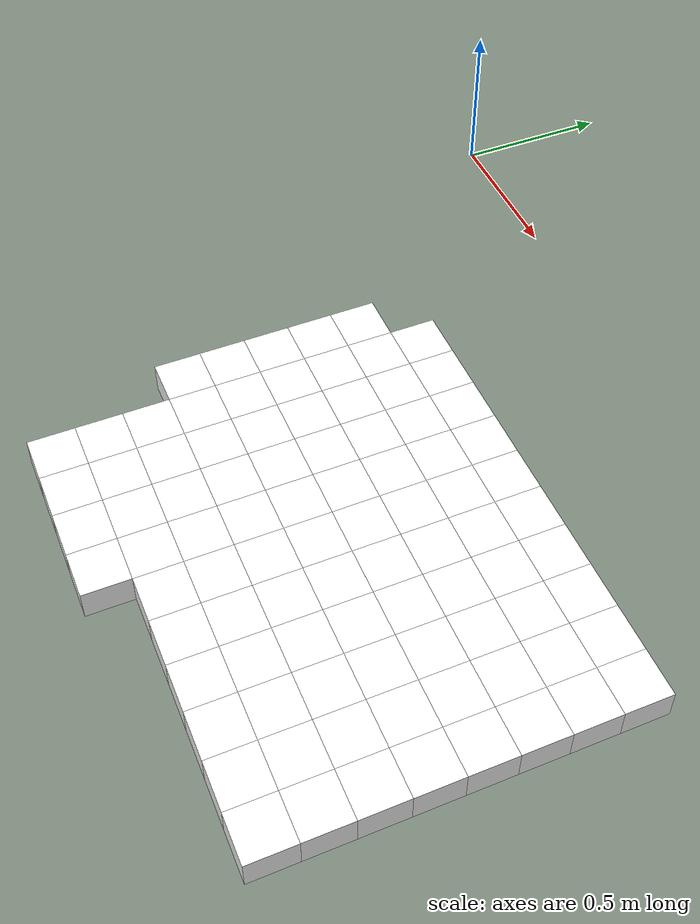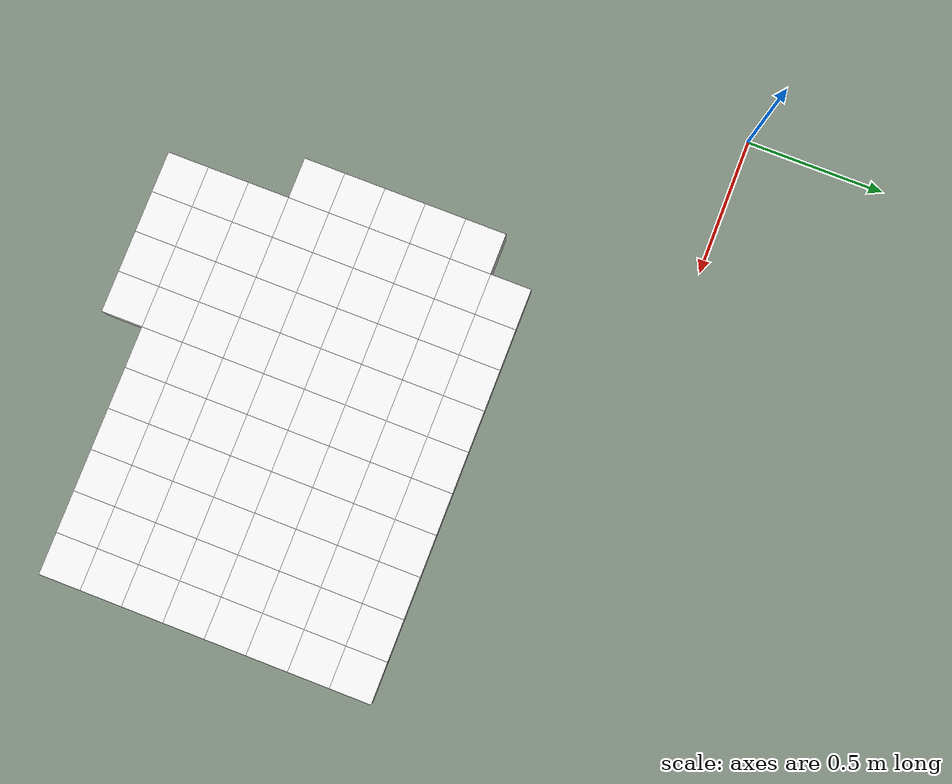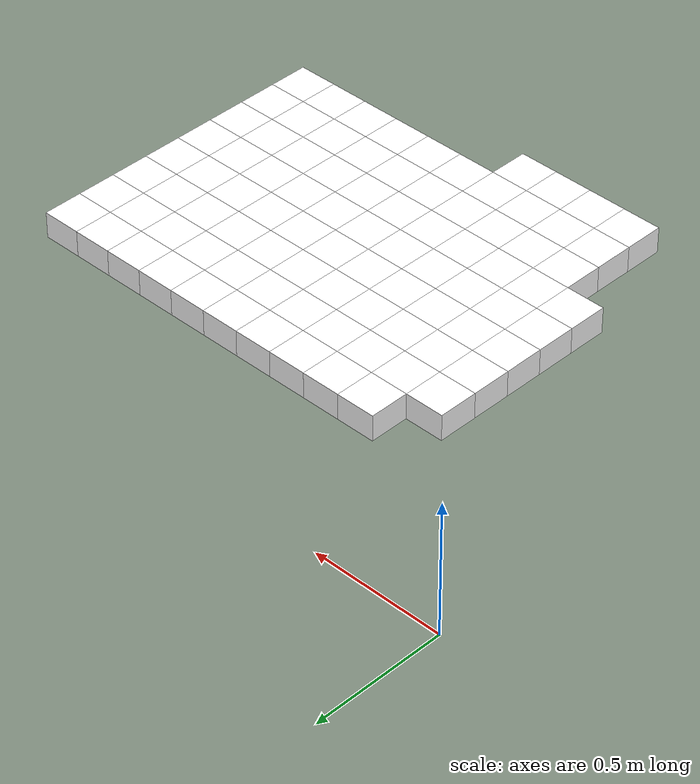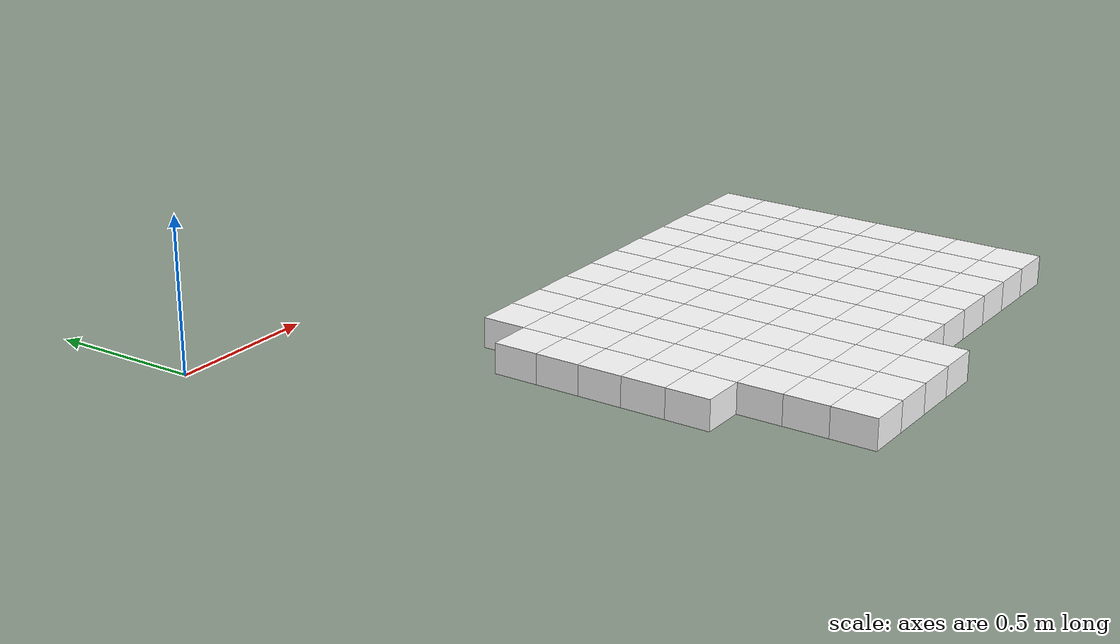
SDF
<sdf version="1.7">
 <world name="default">
  <include><uri>model://sun</uri></include>
  <model name="static_environment">
   <static>true</static>
   <link name="region_369">
    <pose>0.6998798657921892 -0.7502402416940271 0.0 0.0 0.0 4.7123</pose>
    <collision name="region_369_collision">
     <geometry><box><size>0.15 0.15 0.1</size></box></geometry>
     <surface><friction><ode><mu>1.0</mu><mu2>1.0</mu2></ode></friction></surface>
    </collision>
    <visual name="region_369_visual">
     <geometry><box><size>0.15 0.15 0.1</size></box></geometry>
     <material><ambient>1.0 1.0 1.0 1.0</ambient><diffuse>1.0 1.0 1.0 1.0</diffuse></material>
    </visual>
   </link>
   <link name="region_370">
    <pose>0.6998665187345035 -0.9002402411002141 0.0 0.0 0.0 4.7123</pose>
    <collision name="region_370_collision">
     <geometry><box><size>0.15 0.15 0.1</size></box></geometry>
     <surface><friction><ode><mu>1.0</mu><mu2>1.0</mu2></ode></friction></surface>
    </collision>
    <visual name="region_370_visual">
     <geometry><box><size>0.15 0.15 0.1</size></box></geometry>
     <material><ambient>1.0 1.0 1.0 1.0</ambient><diffuse>1.0 1.0 1.0 1.0</diffuse></material>
    </visual>
   </link>
   <link name="region_371">
    <pose>0.6998531716768177 -1.0502402405064006 0.0 0.0 0.0 4.7123</pose>
    <collision name="region_371_collision">
     <geometry><box><size>0.15 0.15 0.1</size></box></geometry>
     <surface><friction><ode><mu>1.0</mu><mu2>1.0</mu2></ode></friction></surface>
    </collision>
    <visual name="region_371_visual">
     <geometry><box><size>0.15 0.15 0.1</size></box></geometry>
     <material><ambient>1.0 1.0 1.0 1.0</ambient><diffuse>1.0 1.0 1.0 1.0</diffuse></material>
    </visual>
   </link>
   <link name="region_372">
    <pose>0.6998398246191315 -1.2002402399125875 0.0 0.0 0.0 4.7123</pose>
    <collision name="region_372_collision">
     <geometry><box><size>0.15 0.15 0.1</size></box></geometry>
     <surface><friction><ode><mu>1.0</mu><mu2>1.0</mu2></ode></friction></surface>
    </collision>
    <visual name="region_372_visual">
     <geometry><box><size>0.15 0.15 0.1</size></box></geometry>
     <material><ambient>1.0 1.0 1.0 1.0</ambient><diffuse>1.0 1.0 1.0 1.0</diffuse></material>
    </visual>
   </link>
   <link name="region_373">
    <pose>0.6998264775614458 -1.350240239318774 0.0 0.0 0.0 4.7123</pose>
    <collision name="region_373_collision">
     <geometry><box><size>0.15 0.15 0.1</size></box></geometry>
     <surface><friction><ode><mu>1.0</mu><mu2>1.0</mu2></ode></friction></surface>
    </collision>
    <visual name="region_373_visual">
     <geometry><box><size>0.15 0.15 0.1</size></box></geometry>
     <material><ambient>1.0 1.0 1.0 1.0</ambient><diffuse>1.0 1.0 1.0 1.0</diffuse></material>
    </visual>
   </link>
   <link name="region_388">
    <pose>0.8498932122560623 -0.6002535893455262 0.0 0.0 0.0 4.7123</pose>
    <collision name="region_388_collision">
     <geometry><box><size>0.15 0.15 0.1</size></box></geometry>
     <surface><friction><ode><mu>1.0</mu><mu2>1.0</mu2></ode></friction></surface>
    </collision>
    <visual name="region_388_visual">
     <geometry><box><size>0.15 0.15 0.1</size></box></geometry>
     <material><ambient>1.0 1.0 1.0 1.0</ambient><diffuse>1.0 1.0 1.0 1.0</diffuse></material>
    </visual>
   </link>
   <link name="region_389">
    <pose>0.8498798651983761 -0.7502535887517129 0.0 0.0 0.0 4.7123</pose>
    <collision name="region_389_collision">
     <geometry><box><size>0.15 0.15 0.1</size></box></geometry>
     <surface><friction><ode><mu>1.0</mu><mu2>1.0</mu2></ode></friction></surface>
    </collision>
    <visual name="region_389_visual">
     <geometry><box><size>0.15 0.15 0.1</size></box></geometry>
     <material><ambient>1.0 1.0 1.0 1.0</ambient><diffuse>1.0 1.0 1.0 1.0</diffuse></material>
    </visual>
   </link>
   <link name="region_390">
    <pose>0.8498665181406904 -0.9002535881578998 0.0 0.0 0.0 4.7123</pose>
    <collision name="region_390_collision">
     <geometry><box><size>0.15 0.15 0.1</size></box></geometry>
     <surface><friction><ode><mu>1.0</mu><mu2>1.0</mu2></ode></friction></surface>
    </collision>
    <visual name="region_390_visual">
     <geometry><box><size>0.15 0.15 0.1</size></box></geometry>
     <material><ambient>1.0 1.0 1.0 1.0</ambient><diffuse>1.0 1.0 1.0 1.0</diffuse></material>
    </visual>
   </link>
   <link name="region_391">
    <pose>0.8498531710830046 -1.0502535875640864 0.0 0.0 0.0 4.7123</pose>
    <collision name="region_391_collision">
     <geometry><box><size>0.15 0.15 0.1</size></box></geometry>
     <surface><friction><ode><mu>1.0</mu><mu2>1.0</mu2></ode></friction></surface>
    </collision>
    <visual name="region_391_visual">
     <geometry><box><size>0.15 0.15 0.1</size></box></geometry>
     <material><ambient>1.0 1.0 1.0 1.0</ambient><diffuse>1.0 1.0 1.0 1.0</diffuse></material>
    </visual>
   </link>
   <link name="region_392">
    <pose>0.8498398240253184 -1.2002535869702733 0.0 0.0 0.0 4.7123</pose>
    <collision name="region_392_collision">
     <geometry><box><size>0.15 0.15 0.1</size></box></geometry>
     <surface><friction><ode><mu>1.0</mu><mu2>1.0</mu2></ode></friction></surface>
    </collision>
    <visual name="region_392_visual">
     <geometry><box><size>0.15 0.15 0.1</size></box></geometry>
     <material><ambient>1.0 1.0 1.0 1.0</ambient><diffuse>1.0 1.0 1.0 1.0</diffuse></material>
    </visual>
   </link>
   <link name="region_393">
    <pose>0.8498264769676327 -1.3502535863764598 0.0 0.0 0.0 4.7123</pose>
    <collision name="region_393_collision">
     <geometry><box><size>0.15 0.15 0.1</size></box></geometry>
     <surface><friction><ode><mu>1.0</mu><mu2>1.0</mu2></ode></friction></surface>
    </collision>
    <visual name="region_393_visual">
     <geometry><box><size>0.15 0.15 0.1</size></box></geometry>
     <material><ambient>1.0 1.0 1.0 1.0</ambient><diffuse>1.0 1.0 1.0 1.0</diffuse></material>
    </visual>
   </link>
   <link name="region_394">
    <pose>0.849813129909947 -1.5002535857826471 0.0 0.0 0.0 4.7123</pose>
    <collision name="region_394_collision">
     <geometry><box><size>0.15 0.15 0.1</size></box></geometry>
     <surface><friction><ode><mu>1.0</mu><mu2>1.0</mu2></ode></friction></surface>
    </collision>
    <visual name="region_394_visual">
     <geometry><box><size>0.15 0.15 0.1</size></box></geometry>
     <material><ambient>1.0 1.0 1.0 1.0</ambient><diffuse>1.0 1.0 1.0 1.0</diffuse></material>
    </visual>
   </link>
   <link name="region_395">
    <pose>0.8497997828522608 -1.6502535851888336 0.0 0.0 0.0 4.7123</pose>
    <collision name="region_395_collision">
     <geometry><box><size>0.15 0.15 0.1</size></box></geometry>
     <surface><friction><ode><mu>1.0</mu><mu2>1.0</mu2></ode></friction></surface>
    </collision>
    <visual name="region_395_visual">
     <geometry><box><size>0.15 0.15 0.1</size></box></geometry>
     <material><ambient>1.0 1.0 1.0 1.0</ambient><diffuse>1.0 1.0 1.0 1.0</diffuse></material>
    </visual>
   </link>
   <link name="region_396">
    <pose>0.849786435794575 -1.8002535845950205 0.0 0.0 0.0 4.7123</pose>
    <collision name="region_396_collision">
     <geometry><box><size>0.15 0.15 0.1</size></box></geometry>
     <surface><friction><ode><mu>1.0</mu><mu2>1.0</mu2></ode></friction></surface>
    </collision>
    <visual name="region_396_visual">
     <geometry><box><size>0.15 0.15 0.1</size></box></geometry>
     <material><ambient>1.0 1.0 1.0 1.0</ambient><diffuse>1.0 1.0 1.0 1.0</diffuse></material>
    </visual>
   </link>
   <link name="region_408">
    <pose>0.9998932116622492 -0.6002669364032122 0.0 0.0 0.0 4.7123</pose>
    <collision name="region_408_collision">
     <geometry><box><size>0.15 0.15 0.1</size></box></geometry>
     <surface><friction><ode><mu>1.0</mu><mu2>1.0</mu2></ode></friction></surface>
    </collision>
    <visual name="region_408_visual">
     <geometry><box><size>0.15 0.15 0.1</size></box></geometry>
     <material><ambient>1.0 1.0 1.0 1.0</ambient><diffuse>1.0 1.0 1.0 1.0</diffuse></material>
    </visual>
   </link>
   <link name="region_409">
    <pose>0.999879864604563 -0.7502669358093988 0.0 0.0 0.0 4.7123</pose>
    <collision name="region_409_collision">
     <geometry><box><size>0.15 0.15 0.1</size></box></geometry>
     <surface><friction><ode><mu>1.0</mu><mu2>1.0</mu2></ode></friction></surface>
    </collision>
    <visual name="region_409_visual">
     <geometry><box><size>0.15 0.15 0.1</size></box></geometry>
     <material><ambient>1.0 1.0 1.0 1.0</ambient><diffuse>1.0 1.0 1.0 1.0</diffuse></material>
    </visual>
   </link>
   <link name="region_410">
    <pose>0.9998665175468773 -0.9002669352155858 0.0 0.0 0.0 4.7123</pose>
    <collision name="region_410_collision">
     <geometry><box><size>0.15 0.15 0.1</size></box></geometry>
     <surface><friction><ode><mu>1.0</mu><mu2>1.0</mu2></ode></friction></surface>
    </collision>
    <visual name="region_410_visual">
     <geometry><box><size>0.15 0.15 0.1</size></box></geometry>
     <material><ambient>1.0 1.0 1.0 1.0</ambient><diffuse>1.0 1.0 1.0 1.0</diffuse></material>
    </visual>
   </link>
   <link name="region_411">
    <pose>0.9998531704891915 -1.0502669346217726 0.0 0.0 0.0 4.7123</pose>
    <collision name="region_411_collision">
     <geometry><box><size>0.15 0.15 0.1</size></box></geometry>
     <surface><friction><ode><mu>1.0</mu><mu2>1.0</mu2></ode></friction></surface>
    </collision>
    <visual name="region_411_visual">
     <geometry><box><size>0.15 0.15 0.1</size></box></geometry>
     <material><ambient>1.0 1.0 1.0 1.0</ambient><diffuse>1.0 1.0 1.0 1.0</diffuse></material>
    </visual>
   </link>
   <link name="region_412">
    <pose>0.9998398234315053 -1.200266934027959 0.0 0.0 0.0 4.7123</pose>
    <collision name="region_412_collision">
     <geometry><box><size>0.15 0.15 0.1</size></box></geometry>
     <surface><friction><ode><mu>1.0</mu><mu2>1.0</mu2></ode></friction></surface>
    </collision>
    <visual name="region_412_visual">
     <geometry><box><size>0.15 0.15 0.1</size></box></geometry>
     <material><ambient>1.0 1.0 1.0 1.0</ambient><diffuse>1.0 1.0 1.0 1.0</diffuse></material>
    </visual>
   </link>
   <link name="region_413">
    <pose>0.9998264763738196 -1.350266933434146 0.0 0.0 0.0 4.7123</pose>
    <collision name="region_413_collision">
     <geometry><box><size>0.15 0.15 0.1</size></box></geometry>
     <surface><friction><ode><mu>1.0</mu><mu2>1.0</mu2></ode></friction></surface>
    </collision>
    <visual name="region_413_visual">
     <geometry><box><size>0.15 0.15 0.1</size></box></geometry>
     <material><ambient>1.0 1.0 1.0 1.0</ambient><diffuse>1.0 1.0 1.0 1.0</diffuse></material>
    </visual>
   </link>
   <link name="region_414">
    <pose>0.9998131293161339 -1.5002669328403329 0.0 0.0 0.0 4.7123</pose>
    <collision name="region_414_collision">
     <geometry><box><size>0.15 0.15 0.1</size></box></geometry>
     <surface><friction><ode><mu>1.0</mu><mu2>1.0</mu2></ode></friction></surface>
    </collision>
    <visual name="region_414_visual">
     <geometry><box><size>0.15 0.15 0.1</size></box></geometry>
     <material><ambient>1.0 1.0 1.0 1.0</ambient><diffuse>1.0 1.0 1.0 1.0</diffuse></material>
    </visual>
   </link>
   <link name="region_415">
    <pose>0.9997997822584477 -1.6502669322465193 0.0 0.0 0.0 4.7123</pose>
    <collision name="region_415_collision">
     <geometry><box><size>0.15 0.15 0.1</size></box></geometry>
     <surface><friction><ode><mu>1.0</mu><mu2>1.0</mu2></ode></friction></surface>
    </collision>
    <visual name="region_415_visual">
     <geometry><box><size>0.15 0.15 0.1</size></box></geometry>
     <material><ambient>1.0 1.0 1.0 1.0</ambient><diffuse>1.0 1.0 1.0 1.0</diffuse></material>
    </visual>
   </link>
   <link name="region_416">
    <pose>0.9997864352007619 -1.8002669316527062 0.0 0.0 0.0 4.7123</pose>
    <collision name="region_416_collision">
     <geometry><box><size>0.15 0.15 0.1</size></box></geometry>
     <surface><friction><ode><mu>1.0</mu><mu2>1.0</mu2></ode></friction></surface>
    </collision>
    <visual name="region_416_visual">
     <geometry><box><size>0.15 0.15 0.1</size></box></geometry>
     <material><ambient>1.0 1.0 1.0 1.0</ambient><diffuse>1.0 1.0 1.0 1.0</diffuse></material>
    </visual>
   </link>
   <link name="region_428">
    <pose>1.1498932110684357 -0.6002802834608981 0.0 0.0 0.0 4.7123</pose>
    <collision name="region_428_collision">
     <geometry><box><size>0.15 0.15 0.1</size></box></geometry>
     <surface><friction><ode><mu>1.0</mu><mu2>1.0</mu2></ode></friction></surface>
    </collision>
    <visual name="region_428_visual">
     <geometry><box><size>0.15 0.15 0.1</size></box></geometry>
     <material><ambient>1.0 1.0 1.0 1.0</ambient><diffuse>1.0 1.0 1.0 1.0</diffuse></material>
    </visual>
   </link>
   <link name="region_429">
    <pose>1.1498798640107495 -0.7502802828670848 0.0 0.0 0.0 4.7123</pose>
    <collision name="region_429_collision">
     <geometry><box><size>0.15 0.15 0.1</size></box></geometry>
     <surface><friction><ode><mu>1.0</mu><mu2>1.0</mu2></ode></friction></surface>
    </collision>
    <visual name="region_429_visual">
     <geometry><box><size>0.15 0.15 0.1</size></box></geometry>
     <material><ambient>1.0 1.0 1.0 1.0</ambient><diffuse>1.0 1.0 1.0 1.0</diffuse></material>
    </visual>
   </link>
   <link name="region_430">
    <pose>1.1498665169530637 -0.9002802822732717 0.0 0.0 0.0 4.7123</pose>
    <collision name="region_430_collision">
     <geometry><box><size>0.15 0.15 0.1</size></box></geometry>
     <surface><friction><ode><mu>1.0</mu><mu2>1.0</mu2></ode></friction></surface>
    </collision>
    <visual name="region_430_visual">
     <geometry><box><size>0.15 0.15 0.1</size></box></geometry>
     <material><ambient>1.0 1.0 1.0 1.0</ambient><diffuse>1.0 1.0 1.0 1.0</diffuse></material>
    </visual>
   </link>
   <link name="region_431">
    <pose>1.149853169895378 -1.0502802816794583 0.0 0.0 0.0 4.7123</pose>
    <collision name="region_431_collision">
     <geometry><box><size>0.15 0.15 0.1</size></box></geometry>
     <surface><friction><ode><mu>1.0</mu><mu2>1.0</mu2></ode></friction></surface>
    </collision>
    <visual name="region_431_visual">
     <geometry><box><size>0.15 0.15 0.1</size></box></geometry>
     <material><ambient>1.0 1.0 1.0 1.0</ambient><diffuse>1.0 1.0 1.0 1.0</diffuse></material>
    </visual>
   </link>
   <link name="region_432">
    <pose>1.1498398228376918 -1.2002802810856452 0.0 0.0 0.0 4.7123</pose>
    <collision name="region_432_collision">
     <geometry><box><size>0.15 0.15 0.1</size></box></geometry>
     <surface><friction><ode><mu>1.0</mu><mu2>1.0</mu2></ode></friction></surface>
    </collision>
    <visual name="region_432_visual">
     <geometry><box><size>0.15 0.15 0.1</size></box></geometry>
     <material><ambient>1.0 1.0 1.0 1.0</ambient><diffuse>1.0 1.0 1.0 1.0</diffuse></material>
    </visual>
   </link>
   <link name="region_433">
    <pose>1.149826475780006 -1.3502802804918317 0.0 0.0 0.0 4.7123</pose>
    <collision name="region_433_collision">
     <geometry><box><size>0.15 0.15 0.1</size></box></geometry>
     <surface><friction><ode><mu>1.0</mu><mu2>1.0</mu2></ode></friction></surface>
    </collision>
    <visual name="region_433_visual">
     <geometry><box><size>0.15 0.15 0.1</size></box></geometry>
     <material><ambient>1.0 1.0 1.0 1.0</ambient><diffuse>1.0 1.0 1.0 1.0</diffuse></material>
    </visual>
   </link>
   <link name="region_434">
    <pose>1.1498131287223203 -1.5002802798980186 0.0 0.0 0.0 4.7123</pose>
    <collision name="region_434_collision">
     <geometry><box><size>0.15 0.15 0.1</size></box></geometry>
     <surface><friction><ode><mu>1.0</mu><mu2>1.0</mu2></ode></friction></surface>
    </collision>
    <visual name="region_434_visual">
     <geometry><box><size>0.15 0.15 0.1</size></box></geometry>
     <material><ambient>1.0 1.0 1.0 1.0</ambient><diffuse>1.0 1.0 1.0 1.0</diffuse></material>
    </visual>
   </link>
   <link name="region_435">
    <pose>1.1497997816646341 -1.650280279304205 0.0 0.0 0.0 4.7123</pose>
    <collision name="region_435_collision">
     <geometry><box><size>0.15 0.15 0.1</size></box></geometry>
     <surface><friction><ode><mu>1.0</mu><mu2>1.0</mu2></ode></friction></surface>
    </collision>
    <visual name="region_435_visual">
     <geometry><box><size>0.15 0.15 0.1</size></box></geometry>
     <material><ambient>1.0 1.0 1.0 1.0</ambient><diffuse>1.0 1.0 1.0 1.0</diffuse></material>
    </visual>
   </link>
   <link name="region_436">
    <pose>1.1497864346069484 -1.800280278710392 0.0 0.0 0.0 4.7123</pose>
    <collision name="region_436_collision">
     <geometry><box><size>0.15 0.15 0.1</size></box></geometry>
     <surface><friction><ode><mu>1.0</mu><mu2>1.0</mu2></ode></friction></surface>
    </collision>
    <visual name="region_436_visual">
     <geometry><box><size>0.15 0.15 0.1</size></box></geometry>
     <material><ambient>1.0 1.0 1.0 1.0</ambient><diffuse>1.0 1.0 1.0 1.0</diffuse></material>
    </visual>
   </link>
   <link name="region_448">
    <pose>1.2998932104746226 -0.6002936305185839 0.0 0.0 0.0 4.7123</pose>
    <collision name="region_448_collision">
     <geometry><box><size>0.15 0.15 0.1</size></box></geometry>
     <surface><friction><ode><mu>1.0</mu><mu2>1.0</mu2></ode></friction></surface>
    </collision>
    <visual name="region_448_visual">
     <geometry><box><size>0.15 0.15 0.1</size></box></geometry>
     <material><ambient>1.0 1.0 1.0 1.0</ambient><diffuse>1.0 1.0 1.0 1.0</diffuse></material>
    </visual>
   </link>
   <link name="region_449">
    <pose>1.2998798634169364 -0.7502936299247706 0.0 0.0 0.0 4.7123</pose>
    <collision name="region_449_collision">
     <geometry><box><size>0.15 0.15 0.1</size></box></geometry>
     <surface><friction><ode><mu>1.0</mu><mu2>1.0</mu2></ode></friction></surface>
    </collision>
    <visual name="region_449_visual">
     <geometry><box><size>0.15 0.15 0.1</size></box></geometry>
     <material><ambient>1.0 1.0 1.0 1.0</ambient><diffuse>1.0 1.0 1.0 1.0</diffuse></material>
    </visual>
   </link>
   <link name="region_450">
    <pose>1.2998665163592507 -0.9002936293309575 0.0 0.0 0.0 4.7123</pose>
    <collision name="region_450_collision">
     <geometry><box><size>0.15 0.15 0.1</size></box></geometry>
     <surface><friction><ode><mu>1.0</mu><mu2>1.0</mu2></ode></friction></surface>
    </collision>
    <visual name="region_450_visual">
     <geometry><box><size>0.15 0.15 0.1</size></box></geometry>
     <material><ambient>1.0 1.0 1.0 1.0</ambient><diffuse>1.0 1.0 1.0 1.0</diffuse></material>
    </visual>
   </link>
   <link name="region_451">
    <pose>1.299853169301565 -1.050293628737144 0.0 0.0 0.0 4.7123</pose>
    <collision name="region_451_collision">
     <geometry><box><size>0.15 0.15 0.1</size></box></geometry>
     <surface><friction><ode><mu>1.0</mu><mu2>1.0</mu2></ode></friction></surface>
    </collision>
    <visual name="region_451_visual">
     <geometry><box><size>0.15 0.15 0.1</size></box></geometry>
     <material><ambient>1.0 1.0 1.0 1.0</ambient><diffuse>1.0 1.0 1.0 1.0</diffuse></material>
    </visual>
   </link>
   <link name="region_452">
    <pose>1.2998398222438787 -1.200293628143331 0.0 0.0 0.0 4.7123</pose>
    <collision name="region_452_collision">
     <geometry><box><size>0.15 0.15 0.1</size></box></geometry>
     <surface><friction><ode><mu>1.0</mu><mu2>1.0</mu2></ode></friction></surface>
    </collision>
    <visual name="region_452_visual">
     <geometry><box><size>0.15 0.15 0.1</size></box></geometry>
     <material><ambient>1.0 1.0 1.0 1.0</ambient><diffuse>1.0 1.0 1.0 1.0</diffuse></material>
    </visual>
   </link>
   <link name="region_453">
    <pose>1.299826475186193 -1.3502936275495174 0.0 0.0 0.0 4.7123</pose>
    <collision name="region_453_collision">
     <geometry><box><size>0.15 0.15 0.1</size></box></geometry>
     <surface><friction><ode><mu>1.0</mu><mu2>1.0</mu2></ode></friction></surface>
    </collision>
    <visual name="region_453_visual">
     <geometry><box><size>0.15 0.15 0.1</size></box></geometry>
     <material><ambient>1.0 1.0 1.0 1.0</ambient><diffuse>1.0 1.0 1.0 1.0</diffuse></material>
    </visual>
   </link>
   <link name="region_454">
    <pose>1.2998131281285072 -1.5002936269557048 0.0 0.0 0.0 4.7123</pose>
    <collision name="region_454_collision">
     <geometry><box><size>0.15 0.15 0.1</size></box></geometry>
     <surface><friction><ode><mu>1.0</mu><mu2>1.0</mu2></ode></friction></surface>
    </collision>
    <visual name="region_454_visual">
     <geometry><box><size>0.15 0.15 0.1</size></box></geometry>
     <material><ambient>1.0 1.0 1.0 1.0</ambient><diffuse>1.0 1.0 1.0 1.0</diffuse></material>
    </visual>
   </link>
   <link name="region_455">
    <pose>1.299799781070821 -1.6502936263618913 0.0 0.0 0.0 4.7123</pose>
    <collision name="region_455_collision">
     <geometry><box><size>0.15 0.15 0.1</size></box></geometry>
     <surface><friction><ode><mu>1.0</mu><mu2>1.0</mu2></ode></friction></surface>
    </collision>
    <visual name="region_455_visual">
     <geometry><box><size>0.15 0.15 0.1</size></box></geometry>
     <material><ambient>1.0 1.0 1.0 1.0</ambient><diffuse>1.0 1.0 1.0 1.0</diffuse></material>
    </visual>
   </link>
   <link name="region_456">
    <pose>1.2997864340131353 -1.8002936257680782 0.0 0.0 0.0 4.7123</pose>
    <collision name="region_456_collision">
     <geometry><box><size>0.15 0.15 0.1</size></box></geometry>
     <surface><friction><ode><mu>1.0</mu><mu2>1.0</mu2></ode></friction></surface>
    </collision>
    <visual name="region_456_visual">
     <geometry><box><size>0.15 0.15 0.1</size></box></geometry>
     <material><ambient>1.0 1.0 1.0 1.0</ambient><diffuse>1.0 1.0 1.0 1.0</diffuse></material>
    </visual>
   </link>
   <link name="region_468">
    <pose>1.449893209880809 -0.6003069775762698 0.0 0.0 0.0 4.7123</pose>
    <collision name="region_468_collision">
     <geometry><box><size>0.15 0.15 0.1</size></box></geometry>
     <surface><friction><ode><mu>1.0</mu><mu2>1.0</mu2></ode></friction></surface>
    </collision>
    <visual name="region_468_visual">
     <geometry><box><size>0.15 0.15 0.1</size></box></geometry>
     <material><ambient>1.0 1.0 1.0 1.0</ambient><diffuse>1.0 1.0 1.0 1.0</diffuse></material>
    </visual>
   </link>
   <link name="region_469">
    <pose>1.4498798628231229 -0.7503069769824565 0.0 0.0 0.0 4.7123</pose>
    <collision name="region_469_collision">
     <geometry><box><size>0.15 0.15 0.1</size></box></geometry>
     <surface><friction><ode><mu>1.0</mu><mu2>1.0</mu2></ode></friction></surface>
    </collision>
    <visual name="region_469_visual">
     <geometry><box><size>0.15 0.15 0.1</size></box></geometry>
     <material><ambient>1.0 1.0 1.0 1.0</ambient><diffuse>1.0 1.0 1.0 1.0</diffuse></material>
    </visual>
   </link>
   <link name="region_470">
    <pose>1.4498665157654371 -0.9003069763886434 0.0 0.0 0.0 4.7123</pose>
    <collision name="region_470_collision">
     <geometry><box><size>0.15 0.15 0.1</size></box></geometry>
     <surface><friction><ode><mu>1.0</mu><mu2>1.0</mu2></ode></friction></surface>
    </collision>
    <visual name="region_470_visual">
     <geometry><box><size>0.15 0.15 0.1</size></box></geometry>
     <material><ambient>1.0 1.0 1.0 1.0</ambient><diffuse>1.0 1.0 1.0 1.0</diffuse></material>
    </visual>
   </link>
   <link name="region_471">
    <pose>1.4498531687077514 -1.0503069757948302 0.0 0.0 0.0 4.7123</pose>
    <collision name="region_471_collision">
     <geometry><box><size>0.15 0.15 0.1</size></box></geometry>
     <surface><friction><ode><mu>1.0</mu><mu2>1.0</mu2></ode></friction></surface>
    </collision>
    <visual name="region_471_visual">
     <geometry><box><size>0.15 0.15 0.1</size></box></geometry>
     <material><ambient>1.0 1.0 1.0 1.0</ambient><diffuse>1.0 1.0 1.0 1.0</diffuse></material>
    </visual>
   </link>
   <link name="region_472">
    <pose>1.4498398216500652 -1.2003069752010167 0.0 0.0 0.0 4.7123</pose>
    <collision name="region_472_collision">
     <geometry><box><size>0.15 0.15 0.1</size></box></geometry>
     <surface><friction><ode><mu>1.0</mu><mu2>1.0</mu2></ode></friction></surface>
    </collision>
    <visual name="region_472_visual">
     <geometry><box><size>0.15 0.15 0.1</size></box></geometry>
     <material><ambient>1.0 1.0 1.0 1.0</ambient><diffuse>1.0 1.0 1.0 1.0</diffuse></material>
    </visual>
   </link>
   <link name="region_473">
    <pose>1.4498264745923795 -1.3503069746072036 0.0 0.0 0.0 4.7123</pose>
    <collision name="region_473_collision">
     <geometry><box><size>0.15 0.15 0.1</size></box></geometry>
     <surface><friction><ode><mu>1.0</mu><mu2>1.0</mu2></ode></friction></surface>
    </collision>
    <visual name="region_473_visual">
     <geometry><box><size>0.15 0.15 0.1</size></box></geometry>
     <material><ambient>1.0 1.0 1.0 1.0</ambient><diffuse>1.0 1.0 1.0 1.0</diffuse></material>
    </visual>
   </link>
   <link name="region_474">
    <pose>1.4498131275346937 -1.5003069740133905 0.0 0.0 0.0 4.7123</pose>
    <collision name="region_474_collision">
     <geometry><box><size>0.15 0.15 0.1</size></box></geometry>
     <surface><friction><ode><mu>1.0</mu><mu2>1.0</mu2></ode></friction></surface>
    </collision>
    <visual name="region_474_visual">
     <geometry><box><size>0.15 0.15 0.1</size></box></geometry>
     <material><ambient>1.0 1.0 1.0 1.0</ambient><diffuse>1.0 1.0 1.0 1.0</diffuse></material>
    </visual>
   </link>
   <link name="region_475">
    <pose>1.4497997804770075 -1.650306973419577 0.0 0.0 0.0 4.7123</pose>
    <collision name="region_475_collision">
     <geometry><box><size>0.15 0.15 0.1</size></box></geometry>
     <surface><friction><ode><mu>1.0</mu><mu2>1.0</mu2></ode></friction></surface>
    </collision>
    <visual name="region_475_visual">
     <geometry><box><size>0.15 0.15 0.1</size></box></geometry>
     <material><ambient>1.0 1.0 1.0 1.0</ambient><diffuse>1.0 1.0 1.0 1.0</diffuse></material>
    </visual>
   </link>
   <link name="region_488">
    <pose>1.599893209286996 -0.6003203246339556 0.0 0.0 0.0 4.7123</pose>
    <collision name="region_488_collision">
     <geometry><box><size>0.15 0.15 0.1</size></box></geometry>
     <surface><friction><ode><mu>1.0</mu><mu2>1.0</mu2></ode></friction></surface>
    </collision>
    <visual name="region_488_visual">
     <geometry><box><size>0.15 0.15 0.1</size></box></geometry>
     <material><ambient>1.0 1.0 1.0 1.0</ambient><diffuse>1.0 1.0 1.0 1.0</diffuse></material>
    </visual>
   </link>
   <link name="region_489">
    <pose>1.5998798622293098 -0.7503203240401423 0.0 0.0 0.0 4.7123</pose>
    <collision name="region_489_collision">
     <geometry><box><size>0.15 0.15 0.1</size></box></geometry>
     <surface><friction><ode><mu>1.0</mu><mu2>1.0</mu2></ode></friction></surface>
    </collision>
    <visual name="region_489_visual">
     <geometry><box><size>0.15 0.15 0.1</size></box></geometry>
     <material><ambient>1.0 1.0 1.0 1.0</ambient><diffuse>1.0 1.0 1.0 1.0</diffuse></material>
    </visual>
   </link>
   <link name="region_490">
    <pose>1.599866515171624 -0.9003203234463292 0.0 0.0 0.0 4.7123</pose>
    <collision name="region_490_collision">
     <geometry><box><size>0.15 0.15 0.1</size></box></geometry>
     <surface><friction><ode><mu>1.0</mu><mu2>1.0</mu2></ode></friction></surface>
    </collision>
    <visual name="region_490_visual">
     <geometry><box><size>0.15 0.15 0.1</size></box></geometry>
     <material><ambient>1.0 1.0 1.0 1.0</ambient><diffuse>1.0 1.0 1.0 1.0</diffuse></material>
    </visual>
   </link>
   <link name="region_491">
    <pose>1.5998531681139383 -1.050320322852516 0.0 0.0 0.0 4.7123</pose>
    <collision name="region_491_collision">
     <geometry><box><size>0.15 0.15 0.1</size></box></geometry>
     <surface><friction><ode><mu>1.0</mu><mu2>1.0</mu2></ode></friction></surface>
    </collision>
    <visual name="region_491_visual">
     <geometry><box><size>0.15 0.15 0.1</size></box></geometry>
     <material><ambient>1.0 1.0 1.0 1.0</ambient><diffuse>1.0 1.0 1.0 1.0</diffuse></material>
    </visual>
   </link>
   <link name="region_492">
    <pose>1.599839821056252 -1.2003203222587024 0.0 0.0 0.0 4.7123</pose>
    <collision name="region_492_collision">
     <geometry><box><size>0.15 0.15 0.1</size></box></geometry>
     <surface><friction><ode><mu>1.0</mu><mu2>1.0</mu2></ode></friction></surface>
    </collision>
    <visual name="region_492_visual">
     <geometry><box><size>0.15 0.15 0.1</size></box></geometry>
     <material><ambient>1.0 1.0 1.0 1.0</ambient><diffuse>1.0 1.0 1.0 1.0</diffuse></material>
    </visual>
   </link>
   <link name="region_493">
    <pose>1.5998264739985664 -1.3503203216648894 0.0 0.0 0.0 4.7123</pose>
    <collision name="region_493_collision">
     <geometry><box><size>0.15 0.15 0.1</size></box></geometry>
     <surface><friction><ode><mu>1.0</mu><mu2>1.0</mu2></ode></friction></surface>
    </collision>
    <visual name="region_493_visual">
     <geometry><box><size>0.15 0.15 0.1</size></box></geometry>
     <material><ambient>1.0 1.0 1.0 1.0</ambient><diffuse>1.0 1.0 1.0 1.0</diffuse></material>
    </visual>
   </link>
   <link name="region_494">
    <pose>1.5998131269408806 -1.5003203210710763 0.0 0.0 0.0 4.7123</pose>
    <collision name="region_494_collision">
     <geometry><box><size>0.15 0.15 0.1</size></box></geometry>
     <surface><friction><ode><mu>1.0</mu><mu2>1.0</mu2></ode></friction></surface>
    </collision>
    <visual name="region_494_visual">
     <geometry><box><size>0.15 0.15 0.1</size></box></geometry>
     <material><ambient>1.0 1.0 1.0 1.0</ambient><diffuse>1.0 1.0 1.0 1.0</diffuse></material>
    </visual>
   </link>
   <link name="region_495">
    <pose>1.5997997798831944 -1.6503203204772627 0.0 0.0 0.0 4.7123</pose>
    <collision name="region_495_collision">
     <geometry><box><size>0.15 0.15 0.1</size></box></geometry>
     <surface><friction><ode><mu>1.0</mu><mu2>1.0</mu2></ode></friction></surface>
    </collision>
    <visual name="region_495_visual">
     <geometry><box><size>0.15 0.15 0.1</size></box></geometry>
     <material><ambient>1.0 1.0 1.0 1.0</ambient><diffuse>1.0 1.0 1.0 1.0</diffuse></material>
    </visual>
   </link>
   <link name="region_508">
    <pose>1.7498932086931829 -0.6003336716916415 0.0 0.0 0.0 4.7123</pose>
    <collision name="region_508_collision">
     <geometry><box><size>0.15 0.15 0.1</size></box></geometry>
     <surface><friction><ode><mu>1.0</mu><mu2>1.0</mu2></ode></friction></surface>
    </collision>
    <visual name="region_508_visual">
     <geometry><box><size>0.15 0.15 0.1</size></box></geometry>
     <material><ambient>1.0 1.0 1.0 1.0</ambient><diffuse>1.0 1.0 1.0 1.0</diffuse></material>
    </visual>
   </link>
   <link name="region_509">
    <pose>1.7498798616354967 -0.7503336710978282 0.0 0.0 0.0 4.7123</pose>
    <collision name="region_509_collision">
     <geometry><box><size>0.15 0.15 0.1</size></box></geometry>
     <surface><friction><ode><mu>1.0</mu><mu2>1.0</mu2></ode></friction></surface>
    </collision>
    <visual name="region_509_visual">
     <geometry><box><size>0.15 0.15 0.1</size></box></geometry>
     <material><ambient>1.0 1.0 1.0 1.0</ambient><diffuse>1.0 1.0 1.0 1.0</diffuse></material>
    </visual>
   </link>
   <link name="region_510">
    <pose>1.749866514577811 -0.9003336705040151 0.0 0.0 0.0 4.7123</pose>
    <collision name="region_510_collision">
     <geometry><box><size>0.15 0.15 0.1</size></box></geometry>
     <surface><friction><ode><mu>1.0</mu><mu2>1.0</mu2></ode></friction></surface>
    </collision>
    <visual name="region_510_visual">
     <geometry><box><size>0.15 0.15 0.1</size></box></geometry>
     <material><ambient>1.0 1.0 1.0 1.0</ambient><diffuse>1.0 1.0 1.0 1.0</diffuse></material>
    </visual>
   </link>
   <link name="region_511">
    <pose>1.7498531675201252 -1.0503336699102017 0.0 0.0 0.0 4.7123</pose>
    <collision name="region_511_collision">
     <geometry><box><size>0.15 0.15 0.1</size></box></geometry>
     <surface><friction><ode><mu>1.0</mu><mu2>1.0</mu2></ode></friction></surface>
    </collision>
    <visual name="region_511_visual">
     <geometry><box><size>0.15 0.15 0.1</size></box></geometry>
     <material><ambient>1.0 1.0 1.0 1.0</ambient><diffuse>1.0 1.0 1.0 1.0</diffuse></material>
    </visual>
   </link>
   <link name="region_512">
    <pose>1.749839820462439 -1.2003336693163886 0.0 0.0 0.0 4.7123</pose>
    <collision name="region_512_collision">
     <geometry><box><size>0.15 0.15 0.1</size></box></geometry>
     <surface><friction><ode><mu>1.0</mu><mu2>1.0</mu2></ode></friction></surface>
    </collision>
    <visual name="region_512_visual">
     <geometry><box><size>0.15 0.15 0.1</size></box></geometry>
     <material><ambient>1.0 1.0 1.0 1.0</ambient><diffuse>1.0 1.0 1.0 1.0</diffuse></material>
    </visual>
   </link>
   <link name="region_513">
    <pose>1.7498264734047533 -1.350333668722575 0.0 0.0 0.0 4.7123</pose>
    <collision name="region_513_collision">
     <geometry><box><size>0.15 0.15 0.1</size></box></geometry>
     <surface><friction><ode><mu>1.0</mu><mu2>1.0</mu2></ode></friction></surface>
    </collision>
    <visual name="region_513_visual">
     <geometry><box><size>0.15 0.15 0.1</size></box></geometry>
     <material><ambient>1.0 1.0 1.0 1.0</ambient><diffuse>1.0 1.0 1.0 1.0</diffuse></material>
    </visual>
   </link>
   <link name="region_514">
    <pose>1.7498131263470675 -1.5003336681287625 0.0 0.0 0.0 4.7123</pose>
    <collision name="region_514_collision">
     <geometry><box><size>0.15 0.15 0.1</size></box></geometry>
     <surface><friction><ode><mu>1.0</mu><mu2>1.0</mu2></ode></friction></surface>
    </collision>
    <visual name="region_514_visual">
     <geometry><box><size>0.15 0.15 0.1</size></box></geometry>
     <material><ambient>1.0 1.0 1.0 1.0</ambient><diffuse>1.0 1.0 1.0 1.0</diffuse></material>
    </visual>
   </link>
   <link name="region_515">
    <pose>1.7497997792893814 -1.650333667534949 0.0 0.0 0.0 4.7123</pose>
    <collision name="region_515_collision">
     <geometry><box><size>0.15 0.15 0.1</size></box></geometry>
     <surface><friction><ode><mu>1.0</mu><mu2>1.0</mu2></ode></friction></surface>
    </collision>
    <visual name="region_515_visual">
     <geometry><box><size>0.15 0.15 0.1</size></box></geometry>
     <material><ambient>1.0 1.0 1.0 1.0</ambient><diffuse>1.0 1.0 1.0 1.0</diffuse></material>
    </visual>
   </link>
   <link name="region_528">
    <pose>1.8998932080993693 -0.6003470187493275 0.0 0.0 0.0 4.7123</pose>
    <collision name="region_528_collision">
     <geometry><box><size>0.15 0.15 0.1</size></box></geometry>
     <surface><friction><ode><mu>1.0</mu><mu2>1.0</mu2></ode></friction></surface>
    </collision>
    <visual name="region_528_visual">
     <geometry><box><size>0.15 0.15 0.1</size></box></geometry>
     <material><ambient>1.0 1.0 1.0 1.0</ambient><diffuse>1.0 1.0 1.0 1.0</diffuse></material>
    </visual>
   </link>
   <link name="region_529">
    <pose>1.8998798610416832 -0.7503470181555142 0.0 0.0 0.0 4.7123</pose>
    <collision name="region_529_collision">
     <geometry><box><size>0.15 0.15 0.1</size></box></geometry>
     <surface><friction><ode><mu>1.0</mu><mu2>1.0</mu2></ode></friction></surface>
    </collision>
    <visual name="region_529_visual">
     <geometry><box><size>0.15 0.15 0.1</size></box></geometry>
     <material><ambient>1.0 1.0 1.0 1.0</ambient><diffuse>1.0 1.0 1.0 1.0</diffuse></material>
    </visual>
   </link>
   <link name="region_530">
    <pose>1.8998665139839974 -0.9003470175617011 0.0 0.0 0.0 4.7123</pose>
    <collision name="region_530_collision">
     <geometry><box><size>0.15 0.15 0.1</size></box></geometry>
     <surface><friction><ode><mu>1.0</mu><mu2>1.0</mu2></ode></friction></surface>
    </collision>
    <visual name="region_530_visual">
     <geometry><box><size>0.15 0.15 0.1</size></box></geometry>
     <material><ambient>1.0 1.0 1.0 1.0</ambient><diffuse>1.0 1.0 1.0 1.0</diffuse></material>
    </visual>
   </link>
   <link name="region_531">
    <pose>1.8998531669263117 -1.050347016967888 0.0 0.0 0.0 4.7123</pose>
    <collision name="region_531_collision">
     <geometry><box><size>0.15 0.15 0.1</size></box></geometry>
     <surface><friction><ode><mu>1.0</mu><mu2>1.0</mu2></ode></friction></surface>
    </collision>
    <visual name="region_531_visual">
     <geometry><box><size>0.15 0.15 0.1</size></box></geometry>
     <material><ambient>1.0 1.0 1.0 1.0</ambient><diffuse>1.0 1.0 1.0 1.0</diffuse></material>
    </visual>
   </link>
   <link name="region_532">
    <pose>1.8998398198686255 -1.2003470163740744 0.0 0.0 0.0 4.7123</pose>
    <collision name="region_532_collision">
     <geometry><box><size>0.15 0.15 0.1</size></box></geometry>
     <surface><friction><ode><mu>1.0</mu><mu2>1.0</mu2></ode></friction></surface>
    </collision>
    <visual name="region_532_visual">
     <geometry><box><size>0.15 0.15 0.1</size></box></geometry>
     <material><ambient>1.0 1.0 1.0 1.0</ambient><diffuse>1.0 1.0 1.0 1.0</diffuse></material>
    </visual>
   </link>
   <link name="region_533">
    <pose>1.8998264728109397 -1.3503470157802613 0.0 0.0 0.0 4.7123</pose>
    <collision name="region_533_collision">
     <geometry><box><size>0.15 0.15 0.1</size></box></geometry>
     <surface><friction><ode><mu>1.0</mu><mu2>1.0</mu2></ode></friction></surface>
    </collision>
    <visual name="region_533_visual">
     <geometry><box><size>0.15 0.15 0.1</size></box></geometry>
     <material><ambient>1.0 1.0 1.0 1.0</ambient><diffuse>1.0 1.0 1.0 1.0</diffuse></material>
    </visual>
   </link>
   <link name="region_534">
    <pose>1.899813125753254 -1.5003470151864482 0.0 0.0 0.0 4.7123</pose>
    <collision name="region_534_collision">
     <geometry><box><size>0.15 0.15 0.1</size></box></geometry>
     <surface><friction><ode><mu>1.0</mu><mu2>1.0</mu2></ode></friction></surface>
    </collision>
    <visual name="region_534_visual">
     <geometry><box><size>0.15 0.15 0.1</size></box></geometry>
     <material><ambient>1.0 1.0 1.0 1.0</ambient><diffuse>1.0 1.0 1.0 1.0</diffuse></material>
    </visual>
   </link>
   <link name="region_535">
    <pose>1.8997997786955678 -1.6503470145926347 0.0 0.0 0.0 4.7123</pose>
    <collision name="region_535_collision">
     <geometry><box><size>0.15 0.15 0.1</size></box></geometry>
     <surface><friction><ode><mu>1.0</mu><mu2>1.0</mu2></ode></friction></surface>
    </collision>
    <visual name="region_535_visual">
     <geometry><box><size>0.15 0.15 0.1</size></box></geometry>
     <material><ambient>1.0 1.0 1.0 1.0</ambient><diffuse>1.0 1.0 1.0 1.0</diffuse></material>
    </visual>
   </link>
   <link name="region_548">
    <pose>2.0498932075055567 -0.6003603658070132 0.0 0.0 0.0 4.7123</pose>
    <collision name="region_548_collision">
     <geometry><box><size>0.15 0.15 0.1</size></box></geometry>
     <surface><friction><ode><mu>1.0</mu><mu2>1.0</mu2></ode></friction></surface>
    </collision>
    <visual name="region_548_visual">
     <geometry><box><size>0.15 0.15 0.1</size></box></geometry>
     <material><ambient>1.0 1.0 1.0 1.0</ambient><diffuse>1.0 1.0 1.0 1.0</diffuse></material>
    </visual>
   </link>
   <link name="region_549">
    <pose>2.049879860447871 -0.7503603652131999 0.0 0.0 0.0 4.7123</pose>
    <collision name="region_549_collision">
     <geometry><box><size>0.15 0.15 0.1</size></box></geometry>
     <surface><friction><ode><mu>1.0</mu><mu2>1.0</mu2></ode></friction></surface>
    </collision>
    <visual name="region_549_visual">
     <geometry><box><size>0.15 0.15 0.1</size></box></geometry>
     <material><ambient>1.0 1.0 1.0 1.0</ambient><diffuse>1.0 1.0 1.0 1.0</diffuse></material>
    </visual>
   </link>
   <link name="region_550">
    <pose>2.0498665133901843 -0.9003603646193868 0.0 0.0 0.0 4.7123</pose>
    <collision name="region_550_collision">
     <geometry><box><size>0.15 0.15 0.1</size></box></geometry>
     <surface><friction><ode><mu>1.0</mu><mu2>1.0</mu2></ode></friction></surface>
    </collision>
    <visual name="region_550_visual">
     <geometry><box><size>0.15 0.15 0.1</size></box></geometry>
     <material><ambient>1.0 1.0 1.0 1.0</ambient><diffuse>1.0 1.0 1.0 1.0</diffuse></material>
    </visual>
   </link>
   <link name="region_551">
    <pose>2.0498531663324986 -1.0503603640255736 0.0 0.0 0.0 4.7123</pose>
    <collision name="region_551_collision">
     <geometry><box><size>0.15 0.15 0.1</size></box></geometry>
     <surface><friction><ode><mu>1.0</mu><mu2>1.0</mu2></ode></friction></surface>
    </collision>
    <visual name="region_551_visual">
     <geometry><box><size>0.15 0.15 0.1</size></box></geometry>
     <material><ambient>1.0 1.0 1.0 1.0</ambient><diffuse>1.0 1.0 1.0 1.0</diffuse></material>
    </visual>
   </link>
   <link name="region_552">
    <pose>2.049839819274813 -1.2003603634317601 0.0 0.0 0.0 4.7123</pose>
    <collision name="region_552_collision">
     <geometry><box><size>0.15 0.15 0.1</size></box></geometry>
     <surface><friction><ode><mu>1.0</mu><mu2>1.0</mu2></ode></friction></surface>
    </collision>
    <visual name="region_552_visual">
     <geometry><box><size>0.15 0.15 0.1</size></box></geometry>
     <material><ambient>1.0 1.0 1.0 1.0</ambient><diffuse>1.0 1.0 1.0 1.0</diffuse></material>
    </visual>
   </link>
   <link name="region_553">
    <pose>2.049826472217127 -1.350360362837947 0.0 0.0 0.0 4.7123</pose>
    <collision name="region_553_collision">
     <geometry><box><size>0.15 0.15 0.1</size></box></geometry>
     <surface><friction><ode><mu>1.0</mu><mu2>1.0</mu2></ode></friction></surface>
    </collision>
    <visual name="region_553_visual">
     <geometry><box><size>0.15 0.15 0.1</size></box></geometry>
     <material><ambient>1.0 1.0 1.0 1.0</ambient><diffuse>1.0 1.0 1.0 1.0</diffuse></material>
    </visual>
   </link>
   <link name="region_554">
    <pose>2.0498131251594414 -1.500360362244134 0.0 0.0 0.0 4.7123</pose>
    <collision name="region_554_collision">
     <geometry><box><size>0.15 0.15 0.1</size></box></geometry>
     <surface><friction><ode><mu>1.0</mu><mu2>1.0</mu2></ode></friction></surface>
    </collision>
    <visual name="region_554_visual">
     <geometry><box><size>0.15 0.15 0.1</size></box></geometry>
     <material><ambient>1.0 1.0 1.0 1.0</ambient><diffuse>1.0 1.0 1.0 1.0</diffuse></material>
    </visual>
   </link>
   <link name="region_555">
    <pose>2.0497997781017556 -1.6503603616503204 0.0 0.0 0.0 4.7123</pose>
    <collision name="region_555_collision">
     <geometry><box><size>0.15 0.15 0.1</size></box></geometry>
     <surface><friction><ode><mu>1.0</mu><mu2>1.0</mu2></ode></friction></surface>
    </collision>
    <visual name="region_555_visual">
     <geometry><box><size>0.15 0.15 0.1</size></box></geometry>
     <material><ambient>1.0 1.0 1.0 1.0</ambient><diffuse>1.0 1.0 1.0 1.0</diffuse></material>
    </visual>
   </link>
   <link name="region_568">
    <pose>2.199893206911744 -0.6003737128646992 0.0 0.0 0.0 4.7123</pose>
    <collision name="region_568_collision">
     <geometry><box><size>0.15 0.15 0.1</size></box></geometry>
     <surface><friction><ode><mu>1.0</mu><mu2>1.0</mu2></ode></friction></surface>
    </collision>
    <visual name="region_568_visual">
     <geometry><box><size>0.15 0.15 0.1</size></box></geometry>
     <material><ambient>1.0 1.0 1.0 1.0</ambient><diffuse>1.0 1.0 1.0 1.0</diffuse></material>
    </visual>
   </link>
   <link name="region_569">
    <pose>2.1998798598540583 -0.7503737122708859 0.0 0.0 0.0 4.7123</pose>
    <collision name="region_569_collision">
     <geometry><box><size>0.15 0.15 0.1</size></box></geometry>
     <surface><friction><ode><mu>1.0</mu><mu2>1.0</mu2></ode></friction></surface>
    </collision>
    <visual name="region_569_visual">
     <geometry><box><size>0.15 0.15 0.1</size></box></geometry>
     <material><ambient>1.0 1.0 1.0 1.0</ambient><diffuse>1.0 1.0 1.0 1.0</diffuse></material>
    </visual>
   </link>
   <link name="region_570">
    <pose>2.1998665127963717 -0.9003737116770728 0.0 0.0 0.0 4.7123</pose>
    <collision name="region_570_collision">
     <geometry><box><size>0.15 0.15 0.1</size></box></geometry>
     <surface><friction><ode><mu>1.0</mu><mu2>1.0</mu2></ode></friction></surface>
    </collision>
    <visual name="region_570_visual">
     <geometry><box><size>0.15 0.15 0.1</size></box></geometry>
     <material><ambient>1.0 1.0 1.0 1.0</ambient><diffuse>1.0 1.0 1.0 1.0</diffuse></material>
    </visual>
   </link>
   <link name="region_571">
    <pose>2.199853165738686 -1.0503737110832594 0.0 0.0 0.0 4.7123</pose>
    <collision name="region_571_collision">
     <geometry><box><size>0.15 0.15 0.1</size></box></geometry>
     <surface><friction><ode><mu>1.0</mu><mu2>1.0</mu2></ode></friction></surface>
    </collision>
    <visual name="region_571_visual">
     <geometry><box><size>0.15 0.15 0.1</size></box></geometry>
     <material><ambient>1.0 1.0 1.0 1.0</ambient><diffuse>1.0 1.0 1.0 1.0</diffuse></material>
    </visual>
   </link>
   <link name="region_572">
    <pose>2.199839818681 -1.2003737104894463 0.0 0.0 0.0 4.7123</pose>
    <collision name="region_572_collision">
     <geometry><box><size>0.15 0.15 0.1</size></box></geometry>
     <surface><friction><ode><mu>1.0</mu><mu2>1.0</mu2></ode></friction></surface>
    </collision>
    <visual name="region_572_visual">
     <geometry><box><size>0.15 0.15 0.1</size></box></geometry>
     <material><ambient>1.0 1.0 1.0 1.0</ambient><diffuse>1.0 1.0 1.0 1.0</diffuse></material>
    </visual>
   </link>
   <link name="region_573">
    <pose>2.1998264716233145 -1.3503737098956328 0.0 0.0 0.0 4.7123</pose>
    <collision name="region_573_collision">
     <geometry><box><size>0.15 0.15 0.1</size></box></geometry>
     <surface><friction><ode><mu>1.0</mu><mu2>1.0</mu2></ode></friction></surface>
    </collision>
    <visual name="region_573_visual">
     <geometry><box><size>0.15 0.15 0.1</size></box></geometry>
     <material><ambient>1.0 1.0 1.0 1.0</ambient><diffuse>1.0 1.0 1.0 1.0</diffuse></material>
    </visual>
   </link>
   <link name="region_574">
    <pose>2.1998131245656287 -1.5003737093018197 0.0 0.0 0.0 4.7123</pose>
    <collision name="region_574_collision">
     <geometry><box><size>0.15 0.15 0.1</size></box></geometry>
     <surface><friction><ode><mu>1.0</mu><mu2>1.0</mu2></ode></friction></surface>
    </collision>
    <visual name="region_574_visual">
     <geometry><box><size>0.15 0.15 0.1</size></box></geometry>
     <material><ambient>1.0 1.0 1.0 1.0</ambient><diffuse>1.0 1.0 1.0 1.0</diffuse></material>
    </visual>
   </link>
   <link name="region_575">
    <pose>2.199799777507943 -1.6503737087080061 0.0 0.0 0.0 4.7123</pose>
    <collision name="region_575_collision">
     <geometry><box><size>0.15 0.15 0.1</size></box></geometry>
     <surface><friction><ode><mu>1.0</mu><mu2>1.0</mu2></ode></friction></surface>
    </collision>
    <visual name="region_575_visual">
     <geometry><box><size>0.15 0.15 0.1</size></box></geometry>
     <material><ambient>1.0 1.0 1.0 1.0</ambient><diffuse>1.0 1.0 1.0 1.0</diffuse></material>
    </visual>
   </link>
  </model>
 </world>
</sdf>
